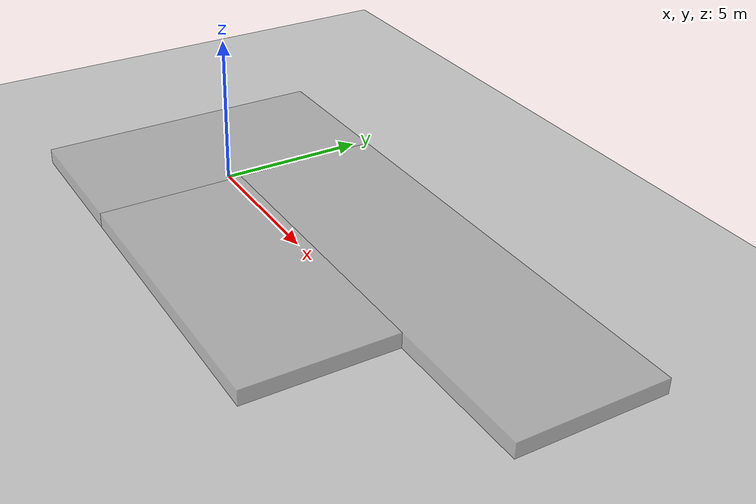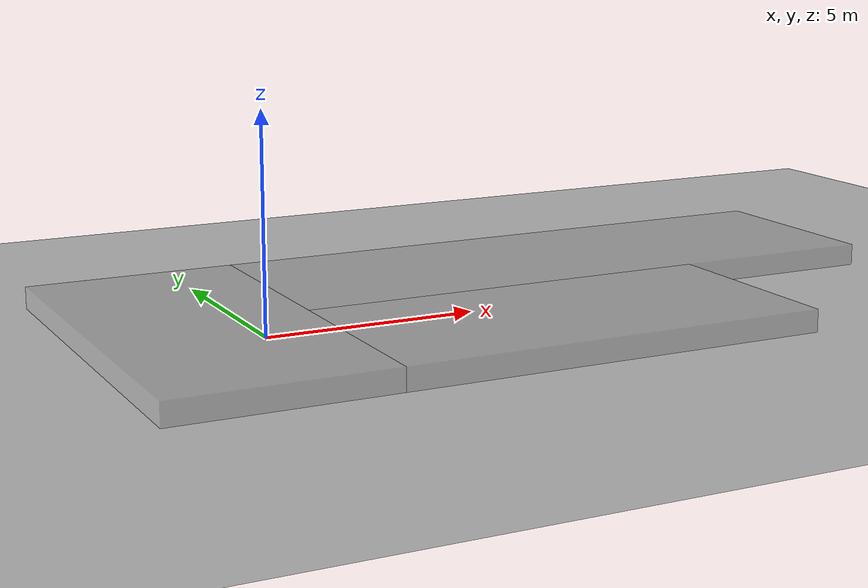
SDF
<?xml version="1.0" ?>
<sdf version="1.2">
  <world name="default">
    <physics type='ode'>
      <gravity>0 0 -9.81</gravity>
      <!-- max step size has to be a multiple of the desired task rate-->
      <max_step_size>0.001</max_step_size>
      <real_time_factor>1</real_time_factor>
    </physics>
    <!-- A global light source -->
    <include>
      <uri>model://sun</uri>
    </include>
    <!-- A ground plane -->
    <include>
      <uri>model://ground_plane</uri>
    </include>
    <include>
      <name>rigid ground</name>
      <uri>model://rigid_ground</uri>
      <pose> -1.5 0.0 0 0 0 -1.57</pose>
    </include>
    <include>
      <name>rigid ground</name>
      <uri>model://rigid_ground</uri>
      <pose>6.0 -2.5 0 0 0 0</pose>
    </include>
    <include>
      <name>soft ground</name>
      <uri>model://soft_ground</uri>
      <pose>6.0 2.5 0 0 0 0</pose>
    </include>
  </world>
</sdf>

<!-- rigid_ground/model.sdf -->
<sdf version="1.2">
  <model name="rigid_ground">
    <static>true</static>
    <link name="link">
      <collision name="collision">
        <pose>0 0 0 0 0 0</pose>
        <geometry>
          <box>
            <size>10 5 1</size>
          </box>
        </geometry>

        <surface>
          <bounce>
            <restitution_coefficient>0.01</restitution_coefficient>
            <threshold>5.0</threshold>
          </bounce>
          <friction>
            <ode>
              <mu>10</mu>
              <mu2>10</mu2>
            </ode>
          </friction>
        </surface>

      </collision>
      <visual name="visual_1">
	<transparency>0.3</transparency>
        <pose>0 0 0 0 0 0</pose>
        <cast_shadows>false</cast_shadows>
        <geometry>
          <box>
            <size>10 5 1</size>
          </box>
        </geometry>
        <material>
	  <lighting>false</lighting>
          <script>
            <uri>model://rigid_ground/materials/scripts</uri>
            <uri>model://rigid_ground/materials/textures</uri>
            <name>vrc/mud</name>
          </script>
        </material>
      </visual>
    </link>
  </model>cc
</sdf>

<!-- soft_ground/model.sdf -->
<sdf version="1.2">
  <model name="soft_ground">
    <static>true</static>
    <link name="link">
      <collision name="collision">
        <pose>0 0 0 0 0 0</pose>
        <geometry>
          <box>
            <size>20 5 1</size>
          </box>
        </geometry>

        <surface>
          <friction>
            <ode>
              <mu>1</mu>
              <mu2>1</mu2>
            </ode>
          </friction>
          <contact>
            <ode>
        <kp>3500.0</kp>  <kd>400.0</kd>  <!-- gain set 1 -->
        <!-- gain set 2 -->
          <!-- kd = 0.3 kp --> <!-- gain set 3 -->
            </ode>
          </contact>
        </surface>

      </collision>
      <visual name="visual_1">
	<transparency>0.3</transparency>
        <pose>0 0 0 0 0 0</pose>
        <cast_shadows>false</cast_shadows>
        <geometry>
          <box>
            <size>20 5 1</size>
          </box>
        </geometry>
        <material>
	  <lighting>true</lighting>
          <script>
            <uri>model://soft_ground/materials/scripts</uri>
            <uri>model://soft_ground/materials/textures</uri>
            <name>vrc/mud</name>
          </script>
        </material>
      </visual>
    </link>
  </model>cc
</sdf>
